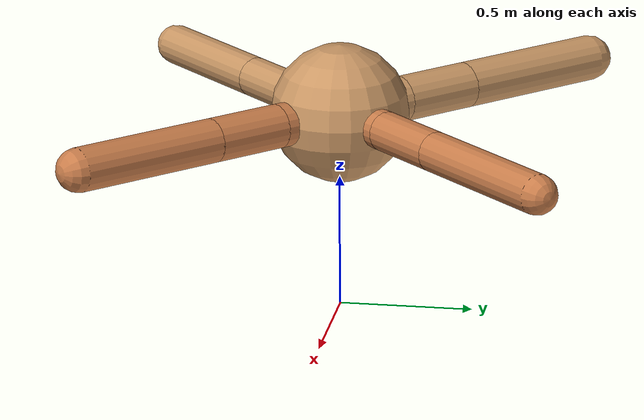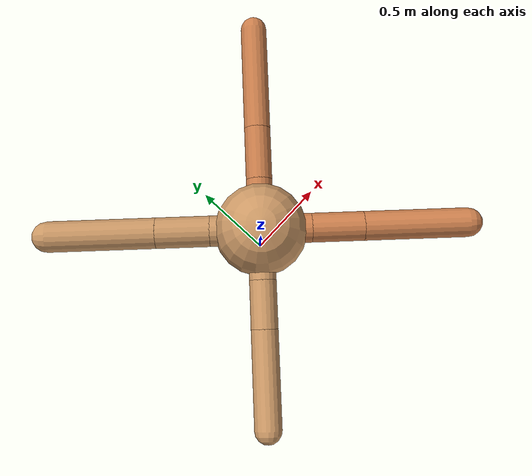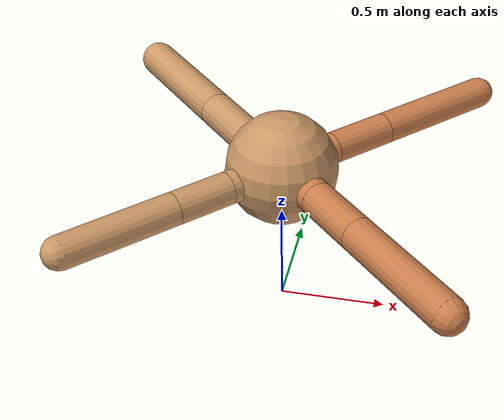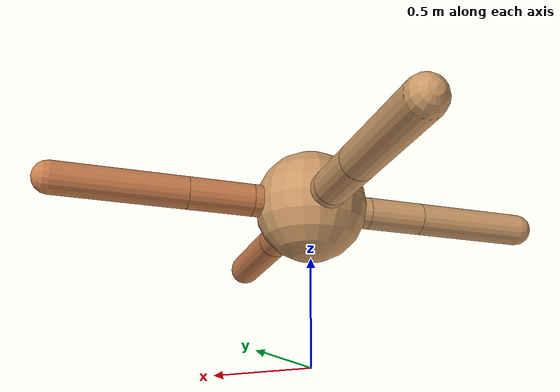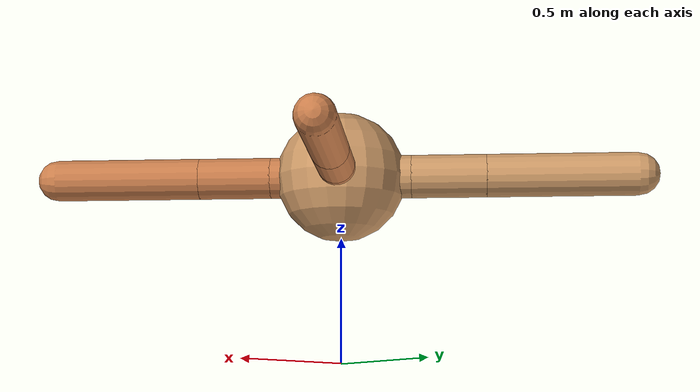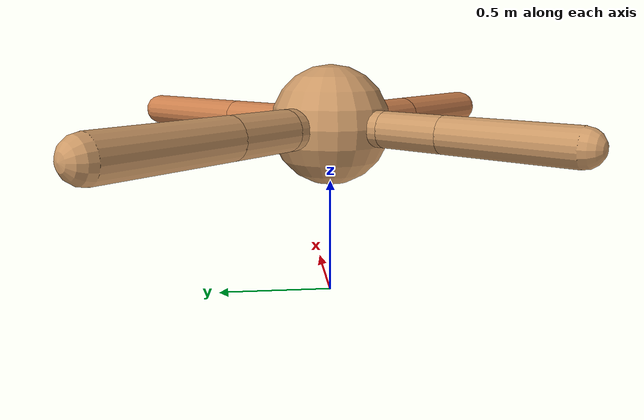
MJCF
<?xml version="1.0" ?>
<mujoco model="ant">

	<compiler angle="degree" coordinate="local" inertiafromgeom="true"/>

	<option integrator="RK4" timestep="0.01"/>

	<custom>

		<numeric data="0.0 0.0 0.55 1.0 0.0 0.0 0.0 0.0 1.0 0.0 -1.0 0.0 -1.0 0.0 1.0" name="init_qpos"/>

	</custom>

	<default>

		<joint armature="1" damping="1" limited="true"/>

		<geom conaffinity="0" condim="3" density="5.0" friction="1.5 0.1 0.1" margin="0.01" rgba="0.8 0.6 0.4 1"/>

	</default>

	<worldbody>

		<body name="torso" pos="0 0 0.75">

			<geom name="torso_geom" pos="0 0 0" size="0.25928175985659685" type="sphere"/>

			<!--joint armature="0" damping="0" limited="false" margin="0.01" name="root" pos="0 0 0" type="free"/-->

			<body name="front_left_leg" pos="0 0 0">

				<geom fromto="0 0 0 0.2 0.2 0" name="aux_1_geom" size="0.07404970249161254" type="capsule" rgba=".8 .5 .3 1"/>

				<body name="aux_1" pos="0.2 0.2 0">

					<joint axis="0 0 1" name="hip_1" pos="0.0 0.0 0.0" range="-40 40" type="hinge"/>

					<geom fromto="0 0 0 0.2098766556195898 0.2098766556195898 0" name="left_leg_geom" size="0.07404970249161254" type="capsule" rgba=".8 .5 .3 1"/>

					<body pos="0.2098766556195898 0.2098766556195898 0" name="front_left_foot">

						<joint axis="-1 1 0" name="ankle_1" pos="0.0 0.0 0.0" range="30 100" type="hinge"/>

						<geom fromto="0 0 0 0.4197533112391796 0.4197533112391796 0" name="left_ankle_geom" size="0.07404970249161254" type="capsule" rgba=".8 .5 .3 1"/>

					</body>

				</body>

			</body>

			<body name="front_right_leg" pos="0 0 0">

				<geom fromto="0 0 0 -0.2 0.2 0" name="aux_2_geom" size="0.08615084425091048" type="capsule"/>

				<body name="aux_2" pos="-0.2 0.2 0">

					<joint axis="0 0 1" name="hip_2" pos="0.0 0.0 0.0" range="-40 40" type="hinge"/>

					<geom fromto="0 0 0 -0.21260743686314032 0.21260743686314032 0" name="right_leg_geom" size="0.08615084425091048" type="capsule"/>

					<body pos="-0.21260743686314032 0.21260743686314032 0" name="front_right_foot">

						<joint axis="1 1 0" name="ankle_2" pos="0.0 0.0 0.0" range="-100 -30" type="hinge"/>

						<geom fromto="0 0 0 -0.42521487372628064 0.42521487372628064 0" name="right_ankle_geom" size="0.08615084425091048" type="capsule"/>

					</body>

				</body>

			</body>

			<body name="left_back_leg" pos="0 0 0">

				<geom fromto="0 0 0 -0.2 -0.2 0" name="aux_3_geom" size="0.07541318590501474" type="capsule"/>

				<body name="aux_3" pos="-0.2 -0.2 0">

					<joint axis="0 0 1" name="hip_3" pos="0.0 0.0 0.0" range="-40 40" type="hinge"/>

					<geom fromto="0 0 0 -0.1885006512647118 -0.1885006512647118 0" name="back_leg_geom" size="0.07541318590501474" type="capsule"/>

					<body pos="-0.1885006512647118 -0.1885006512647118 0" name="left_back_foot">

						<joint axis="-1 1 0" name="ankle_3" pos="0.0 0.0 0.0" range="-100 -30" type="hinge"/>

						<geom fromto="0 0 0 -0.3770013025294236 -0.3770013025294236 0" name="third_ankle_geom" size="0.07541318590501474" type="capsule"/>

					</body>

				</body>

			</body>

			<body name="right_back_leg" pos="0 0 0">

				<geom fromto="0 0 0 0.2 -0.2 0" name="aux_4_geom" size="0.08179532548135576" type="capsule" rgba=".8 .5 .3 1"/>

				<body name="aux_4" pos="0.2 -0.2 0">

					<joint axis="0 0 1" name="hip_4" pos="0.0 0.0 0.0" range="-40 40" type="hinge"/>

					<geom fromto="0 0 0 0.20483815184925264 -0.20483815184925264 0" name="rightback_leg_geom" size="0.08179532548135576" type="capsule" rgba=".8 .5 .3 1"/>

					<body pos="0.20483815184925264 -0.20483815184925264 0" name="right_back_foot">

						<joint axis="1 1 0" name="ankle_4" pos="0.0 0.0 0.0" range="30 100" type="hinge"/>

						<geom fromto="0 0 0 0.4096763036985053 -0.4096763036985053 0" name="fourth_ankle_geom" size="0.08179532548135576" type="capsule" rgba=".8 .5 .3 1"/>

					</body>

				</body>

			</body>

		</body>

	</worldbody>

	<actuator>

		<motor ctrllimited="true" ctrlrange="-1.0 1.0" joint="hip_4" gear="150"/>

		<motor ctrllimited="true" ctrlrange="-1.0 1.0" joint="ankle_4" gear="150"/>

		<motor ctrllimited="true" ctrlrange="-1.0 1.0" joint="hip_1" gear="150"/>

		<motor ctrllimited="true" ctrlrange="-1.0 1.0" joint="ankle_1" gear="150"/>

		<motor ctrllimited="true" ctrlrange="-1.0 1.0" joint="hip_2" gear="150"/>

		<motor ctrllimited="true" ctrlrange="-1.0 1.0" joint="ankle_2" gear="150"/>

		<motor ctrllimited="true" ctrlrange="-1.0 1.0" joint="hip_3" gear="150"/>

		<motor ctrllimited="true" ctrlrange="-1.0 1.0" joint="ankle_3" gear="150"/>

	</actuator>

</mujoco>
